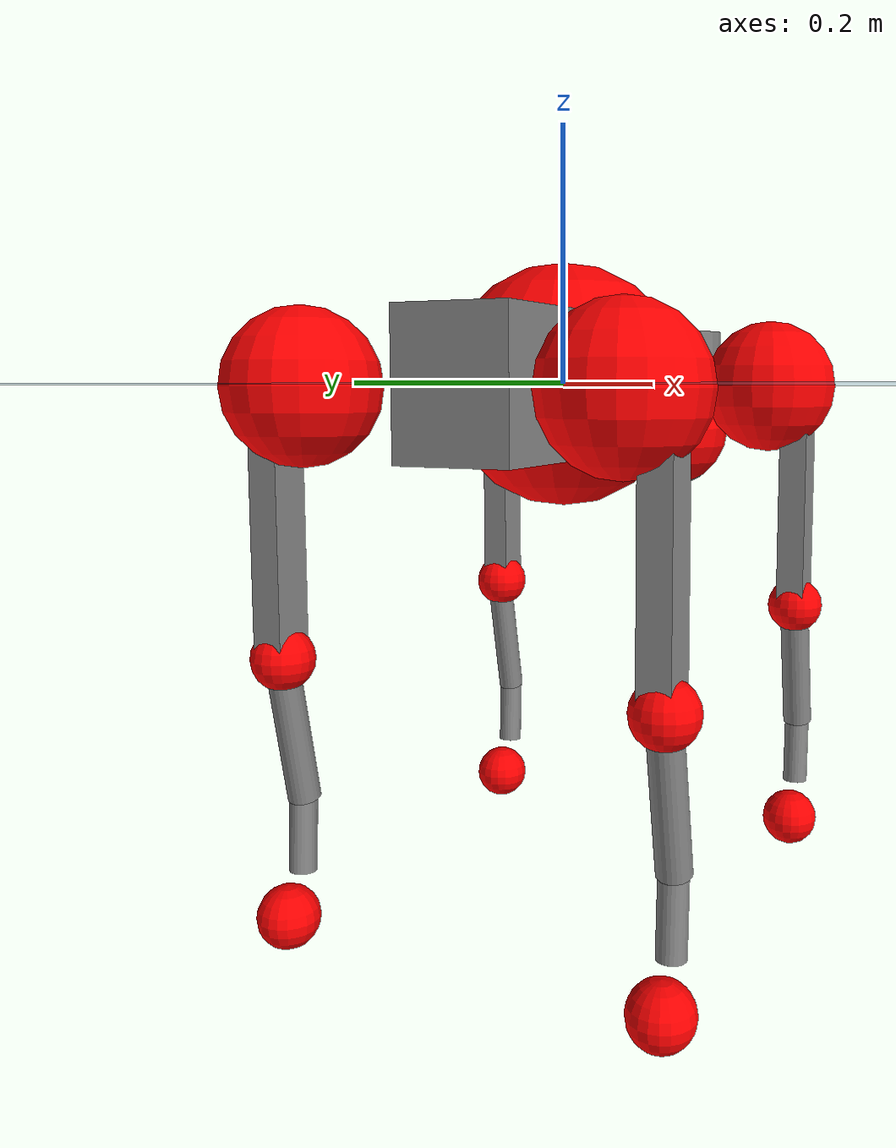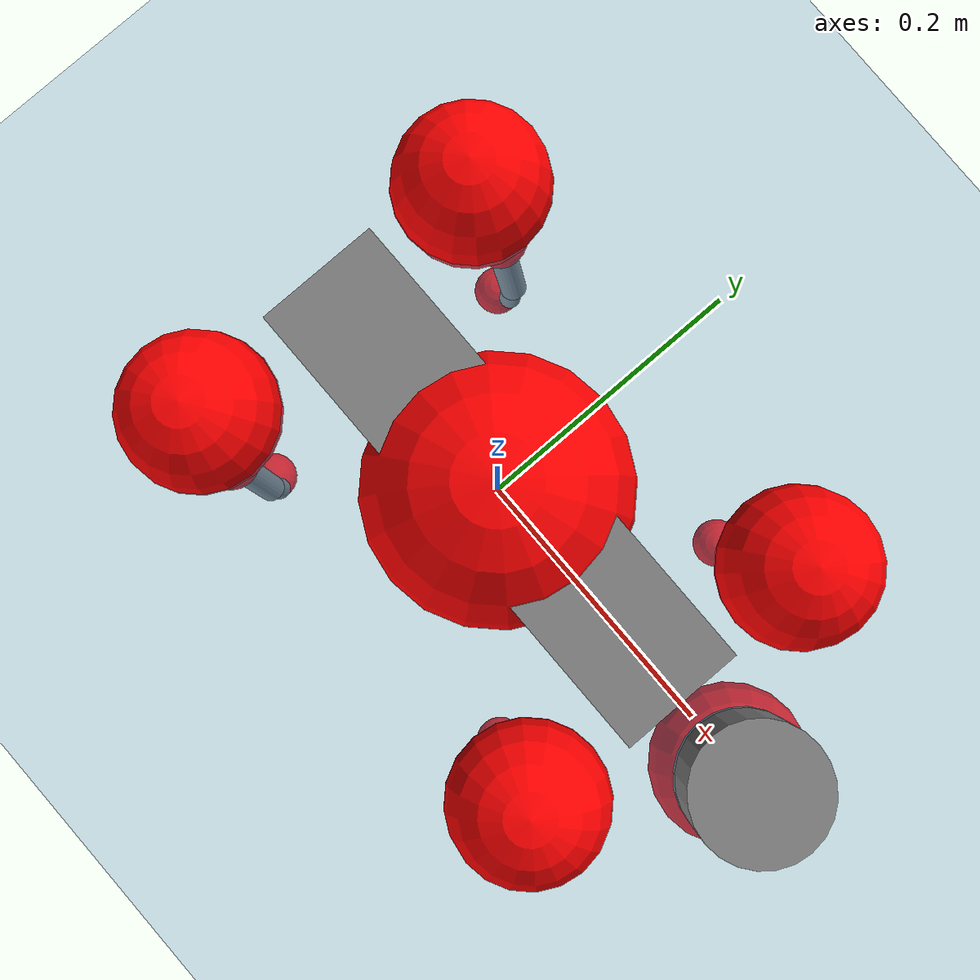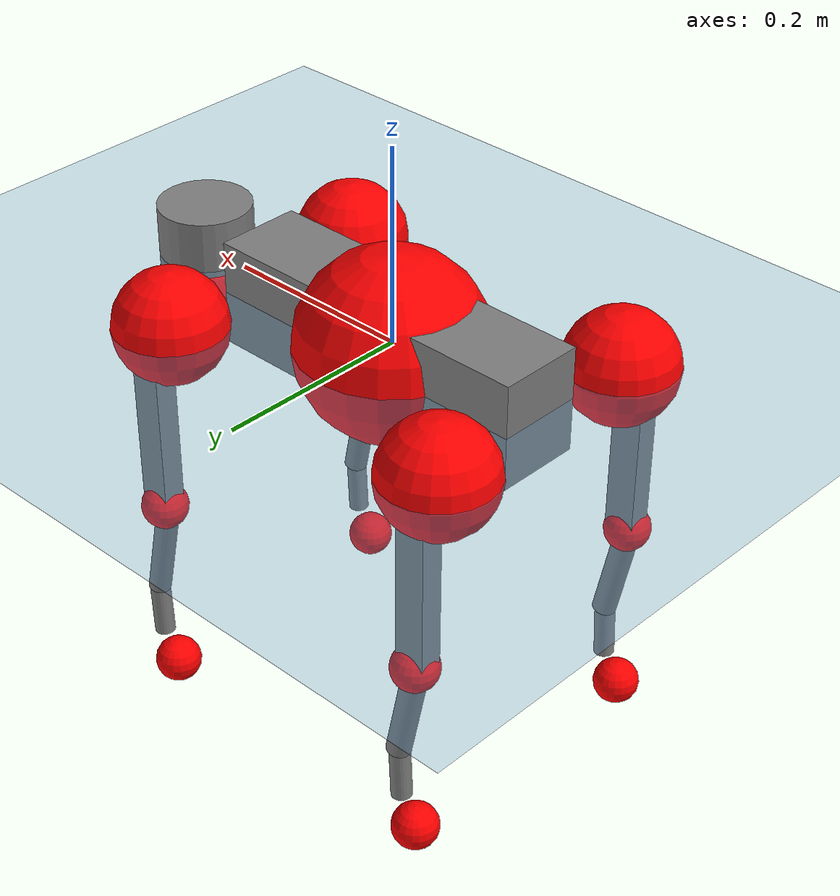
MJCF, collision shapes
<mujoco model="go2">
  <compiler angle="radian" assetdir="assets" balanceinertia="true" inertiafromgeom="false"/>

  <option timestep="0.005" density="1.2" viscosity="2e-05"/>

  <size nkey="1"/>

  <visual>
    <quality shadowsize="8192"/>
    <map shadowclip="0.5"/>
  </visual>

  <default>
    <default class="/">
      <geom contype="0" conaffinity="0" group="1" solref="-1000 -80"/>
      <site size="0.01 0.005 0.005" group="5"/>
      <general forcelimited="true" biastype="affine" gainprm="20" biasprm="0 -20 -0.5"/>
      <default class="go2">
        <joint armature="0.01" damping="0.01" frictionloss="0.2"/>
        <geom condim="1" margin="0.001"/>
        <default class="visual">
          <geom type="mesh" group="2"/>
        </default>
        <default class="collision">
          <geom group="3"/>
          <default class="foot">
            <geom size="0.022 0 0" condim="6" priority="1" friction="0.8 0.02 0.01" solimp="0.015 1 0.022"/>
          </default>
        </default>
        <default class="reward_collision_sphere">
          <geom group="5" rgba="1 0 0 1"/>
        </default>
      </default>
    </default>
  </default>

  <asset>
    <texture type="skybox" colorspace="auto" name="//unnamed_texture_0" builtin="gradient" rgb1="0.95 0.95 0.95" rgb2="0.95 0.95 0.95" width="100" height="600"/>
    <texture type="2d" colorspace="auto" name="texplane" builtin="checker" rgb1="0.345 0.575 0.748" rgb2="0.345 0.575 0.748" markrgb="1 1 1" width="512" height="512"/>
    <material name="MatPlane" class="/" texture="texplane" texuniform="true" texrepeat="2 2" specular="0.9"/>
    <material name="metal" class="/" rgba="0.9 0.95 0.95 1"/>
    <material name="black" class="/" rgba="0 0 0 1"/>
    <material name="white" class="/"/>
    <material name="gray" class="/" rgba="0.671705 0.692426 0.77427 1"/>
    <mesh name="base_0" class="/" file="base_0.obj"/>
    <mesh name="base_1" class="/" file="base_1.obj"/>
    <mesh name="base_2" class="/" file="base_2.obj"/>
    <mesh name="base_3" class="/" file="base_3.obj"/>
    <mesh name="base_4" class="/" file="base_4.obj"/>
    <mesh name="hip_0" class="/" file="hip_0.obj"/>
    <mesh name="hip_1" class="/" file="hip_1.obj"/>
    <mesh name="thigh_0" class="/" file="thigh_0.obj"/>
    <mesh name="thigh_1" class="/" file="thigh_1.obj"/>
    <mesh name="thigh_mirror_0" class="/" file="thigh_mirror_0.obj"/>
    <mesh name="thigh_mirror_1" class="/" file="thigh_mirror_1.obj"/>
    <mesh name="calf_0" class="/" file="calf_0.obj"/>
    <mesh name="calf_1" class="/" file="calf_1.obj"/>
    <mesh name="calf_mirror_0" class="/" file="calf_mirror_0.obj"/>
    <mesh name="calf_mirror_1" class="/" file="calf_mirror_1.obj"/>
    <mesh name="foot" class="/" file="foot.obj"/>
  </asset>

  <worldbody>
    <geom name="floor" class="/" size="100 100 0.125" type="plane" group="0" material="MatPlane"/>
    <light name="toplight_shadow" class="/" pos="0 0 5" dir="0.0990148 0.0990148 -0.990148" type="directional" ambient="0.04 0.04 0.04" diffuse="0.55 0.55 0.55" specular="0.12 0.12 0.12"/>
    <light name="toplight_fill" class="/" pos="0 0 5" dir="0.0990148 0.0990148 -0.990148" type="directional" castshadow="false" ambient="0.04 0.04 0.04" diffuse="0.3 0.3 0.3" specular="0.08 0.08 0.08"/>
    <body name="trunk" childclass="go2" pos="2.10134e-07 -9.48072e-05 -0.00134392" quat="1 1.21469e-05 0.0001714 -2.84595e-05">
      <inertial pos="0.0192378 0.00239156 -0.00317839" quat="-0.000650825 0.713366 -0.00198909 0.700789" mass="5.93106" diaginertia="0.0633612 0.118468 0.0164886"/>
      <joint name="//unnamed_joint_0" type="free" armature="0" damping="0" frictionloss="0"/>
      <geom name="//unnamed_geom_1" class="visual" material="black" mesh="base_0"/>
      <geom name="//unnamed_geom_2" class="visual" material="black" mesh="base_1"/>
      <geom name="//unnamed_geom_3" class="visual" material="black" mesh="base_2"/>
      <geom name="//unnamed_geom_4" class="visual" material="white" mesh="base_3"/>
      <geom name="//unnamed_geom_5" class="visual" material="gray" mesh="base_4"/>
      <geom name="trunk_1" class="collision" size="0.179156 0.0445272 0.0542898" type="box"/>
      <geom name="trunk_2" class="collision" size="0.0476226 0.0428604" pos="0.255128 0 0.00925069" type="cylinder"/>
      <geom name="trunk_3" class="collision" size="0.0447653" pos="0.26229 0 -0.0555042"/>
      <geom name="//unnamed_geom_9" class="reward_collision_sphere" size="0.0952452"/>
      <geom name="//unnamed_geom_10" class="reward_collision_sphere" size="0.0571471" pos="0.250652 0 -0.0416281"/>
      <site name="imu" pos="-0.0276384 -0.00114109 0.0349576" size="0.00952452"/>
      <camera name="track" pos="0 -2.0742 0" quat="0.707107 0.707107 0 0" mode="trackcom"/>
      <camera name="ego_camera" pos="0.279298 0 0.0416281" quat="-0.5 -0.5 0.5 0.5"/>
      <body name="FL_hip" pos="0.172162 0.0480083 7.57222e-05" quat="1 -0.000159707 0.000250003 1.24781e-05">
        <inertial pos="-0.00691922 0.00171397 -0.000284607" quat="0.496704 0.498462 0.506419 0.498359" mass="0.601309" diaginertia="0.000515683 0.000723622 0.00033101"/>
        <joint name="FL_hip_joint" pos="0 0 0" axis="0.999991 -0.00182476 0.00390141" stiffness="0.00270575" range="-1.03664 1.04852" armature="0.00983295" damping="0.00635993" frictionloss="0.170837"/>
        <geom name="//unnamed_geom_11" class="visual" material="metal" mesh="hip_0"/>
        <geom name="//unnamed_geom_12" class="visual" material="gray" mesh="hip_1"/>
        <geom name="//unnamed_geom_13" class="collision" size="0.0438128 0.019049" pos="0 0.0829681 0" quat="0.707107 0.707107 0 0" type="cylinder"/>
        <geom name="//unnamed_geom_14" class="reward_collision_sphere" size="0.0571471" pos="0 0.0725971 0"/>
        <body name="FL_thigh" pos="-0.00180295 0.0986122 0.00216261" quat="1 -6.04972e-06 -2.38028e-05 3.21973e-06">
          <inertial pos="-0.00404842 -0.0228525 -0.030232" quat="0.830387 0.0840653 -0.0181729 0.550508" mass="0.953839" diaginertia="0.00342471 0.0069548 0.000558805"/>
          <joint name="FL_thigh_joint" pos="0 0 0" axis="0.00592482 0.999977 0.00327178" stiffness="0.0048895" range="-1.58612 3.48398" armature="0.00916985" damping="0.00827988" frictionloss="0.193437"/>
          <geom name="//unnamed_geom_15" class="visual" material="metal" mesh="thigh_0"/>
          <geom name="//unnamed_geom_16" class="visual" material="gray" mesh="thigh_1"/>
          <geom name="//unnamed_geom_17" class="collision" size="0.101436 0.0116675 0.0161917" pos="0 0 -0.0985199" quat="0.707107 0 0.707107 0" type="box"/>
          <body name="FL_calf" pos="-0.00143945 0.000369644 -0.19546" quat="0.999999 0.000193916 0.000218827 0.0012751">
            <inertial pos="0.00506366 -0.000539069 -0.130169" quat="0.710786 0.00152807 -0.0045301 0.703392" mass="0.206716" diaginertia="0.000857573 0.00171497 3.553e-05"/>
            <joint name="FL_calf_joint" pos="0 0 0" axis="0.00692973 0.999961 -0.00549818" stiffness="0.000490093" range="-2.72129 -0.827799" armature="0.00976639" damping="0.0107041" frictionloss="0.177669"/>
            <geom name="//unnamed_geom_18" class="visual" material="gray" mesh="calf_0"/>
            <geom name="//unnamed_geom_19" class="visual" material="black" mesh="calf_1"/>
            <geom name="FL_calf0" class="collision" size="0.0114294 0.0571471" pos="0.00716149 0 -0.0555042" quat="0.994493 0 -0.104807 0" type="cylinder"/>
            <geom name="//unnamed_geom_21" class="collision" size="0.010477 0.0309547" pos="0.0179037 0 -0.13691" quat="0.999688 0 0.0249974 0" type="cylinder"/>
            <geom name="//unnamed_geom_22" class="visual" pos="0 0 -0.19704" quat="1 0 0 0" material="black" mesh="foot"/>
            <geom name="FL_foot" class="foot" size="0.0188377" pos="-0.00179037 0 -0.19704"/>
            <geom name="//unnamed_geom_24" class="reward_collision_sphere" size="0.0238113"/>
            <geom name="//unnamed_geom_25" class="reward_collision_sphere" size="0.0238113" pos="-0.00179037 0 -0.19704"/>
            <site name="FL_foot" class="foot" pos="-0.00179037 0 -0.19704" size="0.00952452"/>
          </body>
        </body>
      </body>
      <body name="FR_hip" pos="0.173058 -0.0481176 -0.000738847" quat="1 0.000206896 0.00065263 -0.000640122">
        <inertial pos="-0.00489207 -0.00156456 0.000377455" quat="0.498616 0.504083 0.49956 0.497717" mass="0.56094" diaginertia="0.000489845 0.000695006 0.000324976"/>
        <joint name="FR_hip_joint" pos="0 0 0" axis="0.99999 0.00207728 -0.00399845" stiffness="0.0019693" range="-1.01415 0.99934" armature="0.00954681" damping="0.0110799" frictionloss="0.182571"/>
        <geom name="//unnamed_geom_26" class="visual" pos="0 9.7598e-10 4.18618e-08" quat="4.63268e-05 1 0 0" material="metal" mesh="hip_0"/>
        <geom name="//unnamed_geom_27" class="visual" pos="0 1.58218e-09 -1.0354e-07" quat="4.63268e-05 1 0 0" material="gray" mesh="hip_1"/>
        <geom name="//unnamed_geom_28" class="collision" size="0.0438128 0.019049" pos="0 -0.0829681 0" quat="0.707107 0.707107 0 0" type="cylinder"/>
        <geom name="//unnamed_geom_29" class="reward_collision_sphere" size="0.0571471" pos="0 -0.0725971 0"/>
        <body name="FR_thigh" pos="0.00303745 -0.0977798 0.000860864" quat="1 3.30246e-05 6.05286e-05 0.000468362">
          <inertial pos="-0.00260924 0.0234881 -0.0301114" quat="0.551246 -0.02128 0.0850076 0.829728" mass="1.0299" diaginertia="0.0034235 0.00728845 0.000609422"/>
          <joint name="FR_thigh_joint" pos="0 0 0" axis="0.0042558 -0.999955 0.00853119" range="-3.43811 1.51891" armature="0.00955432" damping="0" frictionloss="0.199574"/>
          <geom name="//unnamed_geom_30" class="visual" material="metal" mesh="thigh_mirror_0"/>
          <geom name="//unnamed_geom_31" class="visual" material="gray" mesh="thigh_mirror_1"/>
          <geom name="//unnamed_geom_32" class="collision" size="0.101436 0.0116675 0.0161917" pos="0 0 -0.0985199" quat="0.707107 0 0.707107 0" type="box"/>
          <body name="FR_calf" pos="0.00237396 -0.000950682 -0.196367" quat="1 -0.000395072 3.84996e-05 4.40611e-05">
            <inertial pos="0.00636927 0.00173298 -0.12852" quat="0.703987 0.000650504 0.00258852 0.710208" mass="0.201172" diaginertia="0.000859902 0.00174644 3.58203e-05"/>
            <joint name="FR_calf_joint" pos="0 0 0" axis="-0.00463007 -0.99995 -0.0088415" stiffness="0.00106865" range="0.817377 2.67995" armature="0.00961647" damping="0.0179345" frictionloss="0.165425"/>
            <geom name="//unnamed_geom_33" class="visual" material="gray" mesh="calf_mirror_0"/>
            <geom name="//unnamed_geom_34" class="visual" material="black" mesh="calf_mirror_1"/>
            <geom name="FR_calf0" class="collision" size="0.0123819 0.0571471" pos="0.00895186 0 -0.0555042" quat="0.995004 0 -0.0998334 0" type="cylinder"/>
            <geom name="//unnamed_geom_36" class="collision" size="0.010477 0.0309547" pos="0.0179037 0 -0.13691" quat="0.999688 0 0.0249974 0" type="cylinder"/>
            <geom name="//unnamed_geom_37" class="visual" pos="0 0 -0.19704" quat="1 0 0 0" material="black" mesh="foot"/>
            <geom name="FR_foot" class="foot" size="0.0225725" pos="-0.00179037 0 -0.19704"/>
            <geom name="//unnamed_geom_39" class="reward_collision_sphere" size="0.0238113"/>
            <geom name="//unnamed_geom_40" class="reward_collision_sphere" size="0.0238113" pos="-0.00179037 0 -0.19704"/>
            <site name="FR_foot" class="foot" pos="-0.00179037 0 -0.19704" size="0.00952452"/>
          </body>
        </body>
      </body>
      <body name="RL_hip" pos="-0.171934 0.0503891 -0.00130819" quat="1 0.000246157 0.000259291 0.000460686">
        <inertial pos="0.00490262 0.000269926 -0.000776906" quat="0.506408 0.500042 0.504585 0.488777" mass="0.566285" diaginertia="0.000501823 0.000723327 0.000326889"/>
        <joint name="RL_hip_joint" pos="0 0 0" axis="-0.999784 0.00229308 -0.0206577" range="-1.06572 1.04759" armature="0.00962182" damping="0.0067112" frictionloss="0.19049"/>
        <geom name="//unnamed_geom_41" class="visual" pos="2.60329e-10 0 5.10304e-08" quat="4.63268e-05 0 1 0" material="metal" mesh="hip_0"/>
        <geom name="//unnamed_geom_42" class="visual" pos="4.22024e-10 0 4.52567e-08" quat="4.63268e-05 0 1 0" material="gray" mesh="hip_1"/>
        <geom name="//unnamed_geom_43" class="collision" size="0.0438128 0.019049" pos="0 0.0829681 0" quat="0.707107 0.707107 0 0" type="cylinder"/>
        <geom name="//unnamed_geom_44" class="reward_collision_sphere" size="0.0571471" pos="0 0.0725971 0"/>
        <body name="RL_thigh" pos="-0.000367179 0.0968406 -0.000786309" quat="1 -5.07706e-05 -4.07852e-05 -8.93335e-05">
          <inertial pos="-0.00237202 -0.0241514 -0.0303249" quat="0.830939 0.0858273 -0.0174315 0.549427" mass="1.00164" diaginertia="0.00355388 0.00720406 0.000612678"/>
          <joint name="RL_thigh_joint" pos="0 0 0" axis="0.00446882 0.999922 -0.0116433" stiffness="0.0030912" range="-0.520509 4.54314" armature="0.00939656" damping="0.0076697" frictionloss="0.191053"/>
          <geom name="//unnamed_geom_45" class="visual" material="metal" mesh="thigh_0"/>
          <geom name="//unnamed_geom_46" class="visual" material="gray" mesh="thigh_1"/>
          <geom name="//unnamed_geom_47" class="collision" size="0.101436 0.0116675 0.0161917" pos="0 0 -0.0985199" quat="0.707107 0 0.707107 0" type="box"/>
          <body name="RL_calf" pos="0.00215604 0.000407371 -0.196966" quat="0.999999 -0.000699204 -3.74887e-05 -0.000832167">
            <inertial pos="0.00737289 0.000487289 -0.131971" quat="0.710775 0.0017821 -0.00469841 0.703401" mass="0.209091" diaginertia="0.000896075 0.00186874 3.83934e-05"/>
            <joint name="RL_calf_joint" pos="0 0 0" axis="0.0143426 0.999866 -0.00787864" range="-2.72337 -0.888388" armature="0.00945783" damping="0.00487271" frictionloss="0.188884"/>
            <geom name="//unnamed_geom_48" class="visual" material="gray" mesh="calf_0"/>
            <geom name="//unnamed_geom_49" class="visual" material="black" mesh="calf_1"/>
            <geom name="RL_calf0" class="collision" size="0.0123819 0.0571471" pos="0.00895186 0 -0.0555042" quat="0.995004 0 -0.0998334 0" type="cylinder"/>
            <geom name="//unnamed_geom_51" class="collision" size="0.010477 0.0309547" pos="0.0179037 0 -0.13691" quat="0.999688 0 0.0249974 0" type="cylinder"/>
            <geom name="//unnamed_geom_52" class="visual" pos="0 0 -0.19704" quat="1 0 0 0" material="black" mesh="foot"/>
            <geom name="RL_foot" class="foot" size="0.0164637" pos="-0.00179037 0 -0.19704"/>
            <geom name="//unnamed_geom_54" class="reward_collision_sphere" size="0.0238113"/>
            <geom name="//unnamed_geom_55" class="reward_collision_sphere" size="0.0238113" pos="-0.00179037 0 -0.19704"/>
            <site name="RL_foot" class="foot" pos="-0.00179037 0 -0.19704" size="0.00952452"/>
          </body>
        </body>
      </body>
      <body name="RR_hip" pos="-0.172753 -0.0478337 -0.00246731" quat="0.999999 -0.000817609 -0.000136069 -0.000767378">
        <inertial pos="0.00382572 -0.00212709 0.000549965" quat="0.501169 0.506704 0.494556 0.497489" mass="0.586409" diaginertia="0.000506718 0.000707736 0.000321004"/>
        <joint name="RR_hip_joint" pos="0 0 0" axis="-0.999994 0.00251924 0.00250806" range="-1.09052 1.02863" armature="0.00834329" damping="0.00990644" frictionloss="0.197482"/>
        <geom name="//unnamed_geom_56" class="visual" pos="-2.55416e-10 9.7598e-10 9.16864e-09" quat="2.14617e-09 4.63268e-05 4.63268e-05 -1" material="metal" mesh="hip_0"/>
        <geom name="//unnamed_geom_57" class="visual" pos="-4.34176e-10 1.58218e-09 1.48797e-07" quat="2.14617e-09 4.63268e-05 4.63268e-05 -1" material="gray" mesh="hip_1"/>
        <geom name="//unnamed_geom_58" class="collision" size="0.0438128 0.019049" pos="0 -0.0829681 0" quat="0.707107 0.707107 0 0" type="cylinder"/>
        <geom name="//unnamed_geom_59" class="reward_collision_sphere" size="0.0571471" pos="0 -0.0725971 0"/>
        <body name="RR_thigh" pos="-3.29681e-05 -0.0992257 -0.00323887" quat="1 -9.82392e-05 3.03259e-05 0.000141617">
          <inertial pos="-0.00322267 0.0258603 -0.029977" quat="0.544558 -0.022718 0.083074 0.83429" mass="0.96159" diaginertia="0.00328448 0.00676632 0.000573312"/>
          <joint name="RR_thigh_joint" pos="0 0 0" axis="0.00179893 -0.999997 -0.00155126" stiffness="0.00485335" range="-4.55197 0.473942" armature="0.010909" damping="0.0125163" frictionloss="0.180577"/>
          <geom name="//unnamed_geom_60" class="visual" material="metal" mesh="thigh_mirror_0"/>
          <geom name="//unnamed_geom_61" class="visual" material="gray" mesh="thigh_mirror_1"/>
          <geom name="//unnamed_geom_62" class="collision" size="0.101436 0.0116675 0.0161917" pos="0 0 -0.0985199" quat="0.707107 0 0.707107 0" type="box"/>
          <body name="RR_calf" pos="-0.000934035 -0.00242164 -0.197438" quat="1 0.000826296 -0.000287813 3.71602e-05">
            <inertial pos="0.00523319 0.000528175 -0.130543" quat="0.706728 0.00356722 -0.00759792 0.707435" mass="0.202422" diaginertia="0.000850112 0.00178078 3.7223e-05"/>
            <joint name="RR_calf_joint" pos="0 0 0" axis="3.27613e-05 -0.999973 0.00734977" stiffness="0.0101062" range="0.876065 2.77243" armature="0.00929929" damping="0.0142918" frictionloss="0.187931"/>
            <geom name="//unnamed_geom_63" class="visual" material="gray" mesh="calf_mirror_0"/>
            <geom name="//unnamed_geom_64" class="visual" material="black" mesh="calf_mirror_1"/>
            <geom name="RR_calf0" class="collision" size="0.0123819 0.0571471" pos="0.00895186 0 -0.0555042" quat="0.995004 0 -0.0998334 0" type="cylinder"/>
            <geom name="//unnamed_geom_66" class="collision" size="0.010477 0.0309547" pos="0.0179037 0 -0.13691" quat="0.999688 0 0.0249974 0" type="cylinder"/>
            <geom name="//unnamed_geom_67" class="visual" pos="0 0 -0.19704" quat="1 0 0 0" material="black" mesh="foot"/>
            <geom name="RR_foot" class="foot" size="0.0205972" pos="-0.00179037 0 -0.19704"/>
            <geom name="//unnamed_geom_69" class="reward_collision_sphere" size="0.0238113"/>
            <geom name="//unnamed_geom_70" class="reward_collision_sphere" size="0.0238113" pos="-0.00179037 0 -0.19704"/>
            <site name="RR_foot" class="foot" pos="-0.00179037 0 -0.19704" size="0.00952452"/>
          </body>
        </body>
      </body>
    </body>
  </worldbody>

  <contact>
    <pair class="/" geom1="floor" geom2="FL_foot" name="//unnamed_contact_0"/>
    <pair class="/" geom1="floor" geom2="FR_foot" name="//unnamed_contact_1"/>
    <pair class="/" geom1="floor" geom2="RL_foot" name="//unnamed_contact_2"/>
    <pair class="/" geom1="floor" geom2="RR_foot" name="//unnamed_contact_3"/>
  </contact>

  <actuator>
    <general name="FL_hip" class="/" joint="FL_hip_joint" forcerange="-22.2387 22.2387" gainprm="20.3611" biasprm="0 -20.3611 -0.46831"/>
    <general name="FL_thigh" class="/" joint="FL_thigh_joint" forcerange="-20.397 20.397" gainprm="20.3611" biasprm="0 -20.3611 -0.46831"/>
    <general name="FL_calf" class="/" joint="FL_calf_joint" forcerange="-41.4184 41.4184" gainprm="20.3611" biasprm="0 -20.3611 -0.46831"/>
    <general name="FR_hip" class="/" joint="FR_hip_joint" forcerange="-23.3726 23.3726" gainprm="20.3611" biasprm="0 -20.3611 -0.46831"/>
    <general name="FR_thigh" class="/" joint="FR_thigh_joint" forcerange="-21.7353 21.7353" gainprm="20.3611" biasprm="0 -20.3611 -0.46831"/>
    <general name="FR_calf" class="/" joint="FR_calf_joint" forcerange="-43.7616 43.7616" gainprm="20.3611" biasprm="0 -20.3611 -0.46831"/>
    <general name="RL_hip" class="/" joint="RL_hip_joint" forcerange="-23.4598 23.4598" gainprm="20.3611" biasprm="0 -20.3611 -0.46831"/>
    <general name="RL_thigh" class="/" joint="RL_thigh_joint" forcerange="-22.6235 22.6235" gainprm="20.3611" biasprm="0 -20.3611 -0.46831"/>
    <general name="RL_calf" class="/" joint="RL_calf_joint" forcerange="-43.2024 43.2024" gainprm="20.3611" biasprm="0 -20.3611 -0.46831"/>
    <general name="RR_hip" class="/" joint="RR_hip_joint" forcerange="-20.3597 20.3597" gainprm="20.3611" biasprm="0 -20.3611 -0.46831"/>
    <general name="RR_thigh" class="/" joint="RR_thigh_joint" forcerange="-23.04 23.04" gainprm="20.3611" biasprm="0 -20.3611 -0.46831"/>
    <general name="RR_calf" class="/" joint="RR_calf_joint" forcerange="-44.152 44.152" gainprm="20.3611" biasprm="0 -20.3611 -0.46831"/>
  </actuator>

  <sensor>
    <gyro site="imu" name="imu_angular_velocity"/>
    <velocimeter site="imu" name="imu_linear_velocity"/>
    <framelinvel objtype="site" objname="FL_foot" name="FL_foot_global_linear_velocity"/>
    <framelinvel objtype="site" objname="FR_foot" name="FR_foot_global_linear_velocity"/>
    <framelinvel objtype="site" objname="RL_foot" name="RL_foot_global_linear_velocity"/>
    <framelinvel objtype="site" objname="RR_foot" name="RR_foot_global_linear_velocity"/>
  </sensor>

  <keyframe>
    <key name="home" qpos="0 0 0.325 1 0 0 0 0.1 0.8 -1.5 -0.1 -0.8 1.5 -0.1 0.8 -1.5 0.1 -0.8 1.5"/>
  </keyframe>
</mujoco>
